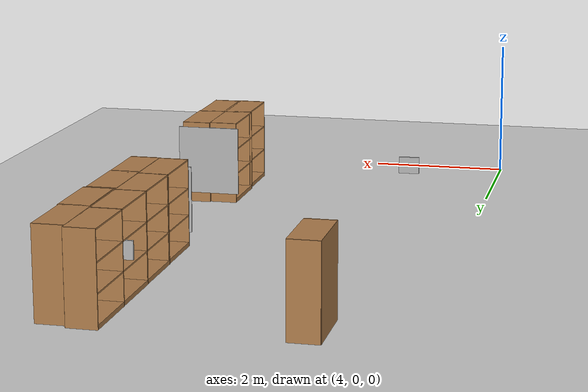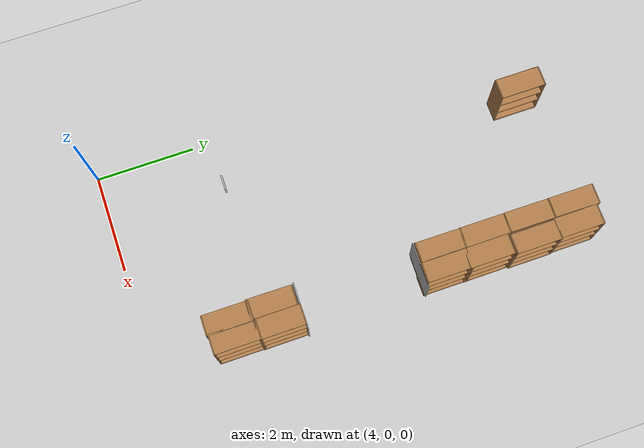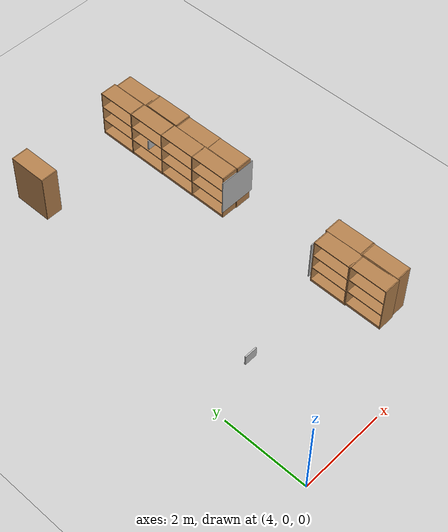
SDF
<sdf version="1.7">
 <world name="library_world">
  <model name="ground_plane">
   <static>1</static>
   <link name="link">
    <collision name="collision">
     <geometry><plane><normal>0 0 1</normal><size>100 100</size></plane></geometry>
     <surface>
      <contact><collide_bitmask>65535</collide_bitmask></contact>
      <friction><ode><mu>100</mu><mu2>50</mu2></ode></friction>
     </surface>
    </collision>
    <visual name="visual">
     <cast_shadows>0</cast_shadows>
     <geometry><plane><normal>0 0 1</normal><size>100 100</size></plane></geometry>
     <material>
      <script><uri>file://media/materials/scripts/gazebo.material</uri><name>Gazebo/Grey</name></script>
     </material>
    </visual>
   </link>
  </model>
  <model name="bookshelf_0_clone_8_clone_9">
   <static>1</static>
   <link name="link">
    <inertial><mass>1</mass></inertial>
    <collision name="back">
     <pose>0 0.005 0.6 0 -0 0</pose>
     <geometry><box><size>0.9 0.01 1.2</size></box></geometry>
    </collision>
    <visual name="visual1">
     <pose>0 0.005 0.6 0 -0 0</pose>
     <geometry><box><size>0.9 0.01 1.2</size></box></geometry>
     <material>
      <script><uri>file://media/materials/scripts/gazebo.material</uri><name>Gazebo/Wood</name></script>
     </material>
    </visual>
    <collision name="left_side">
     <pose>0.45 -0.195 0.6 0 -0 0</pose>
     <geometry><box><size>0.02 0.4 1.2</size></box></geometry>
    </collision>
    <visual name="visual2">
     <pose>0.45 -0.195 0.6 0 -0 0</pose>
     <geometry><box><size>0.02 0.4 1.2</size></box></geometry>
     <material>
      <script><uri>file://media/materials/scripts/gazebo.material</uri><name>Gazebo/Wood</name></script>
     </material>
    </visual>
    <collision name="right_side">
     <pose>-0.45 -0.195 0.6 0 -0 0</pose>
     <geometry><box><size>0.02 0.4 1.2</size></box></geometry>
    </collision>
    <visual name="visual3">
     <pose>-0.45 -0.195 0.6 0 -0 0</pose>
     <geometry><box><size>0.02 0.4 1.2</size></box></geometry>
     <material>
      <script><uri>file://media/materials/scripts/gazebo.material</uri><name>Gazebo/Wood</name></script>
     </material>
    </visual>
    <collision name="bottom">
     <pose>0 -0.195 0.03 0 -0 0</pose>
     <geometry><box><size>0.88 0.4 0.06</size></box></geometry>
    </collision>
    <visual name="visual4">
     <pose>0 -0.195 0.03 0 -0 0</pose>
     <geometry><box><size>0.88 0.4 0.06</size></box></geometry>
     <material>
      <script><uri>file://media/materials/scripts/gazebo.material</uri><name>Gazebo/Wood</name></script>
     </material>
    </visual>
    <collision name="top">
     <pose>0 -0.195 1.19 0 -0 0</pose>
     <geometry><box><size>0.88 0.4 0.02</size></box></geometry>
    </collision>
    <visual name="visual5">
     <pose>0 -0.195 1.19 0 -0 0</pose>
     <geometry><box><size>0.88 0.4 0.02</size></box></geometry>
     <material>
      <script><uri>file://media/materials/scripts/gazebo.material</uri><name>Gazebo/Wood</name></script>
     </material>
    </visual>
    <collision name="low_shelf">
     <pose>0 -0.195 0.43 0 -0 0</pose>
     <geometry><box><size>0.88 0.4 0.02</size></box></geometry>
    </collision>
    <visual name="visual6">
     <pose>0 -0.195 0.43 0 -0 0</pose>
     <geometry><box><size>0.88 0.4 0.02</size></box></geometry>
     <material>
      <script><uri>file://media/materials/scripts/gazebo.material</uri><name>Gazebo/Wood</name></script>
     </material>
    </visual>
    <collision name="high_shelf">
     <pose>0 -0.195 0.8 0 -0 0</pose>
     <geometry><box><size>0.88 0.4 0.02</size></box></geometry>
    </collision>
    <visual name="visual7">
     <pose>0 -0.195 0.8 0 -0 0</pose>
     <geometry><box><size>0.88 0.4 0.02</size></box></geometry>
     <material>
      <script><uri>file://media/materials/scripts/gazebo.material</uri><name>Gazebo/Wood</name></script>
     </material>
    </visual>
   </link>
   <pose>7.99259 8.5749 0 0 0 -1.57537</pose>
  </model>
  <model name="bookshelf_0_clone_8_clone_10">
   <static>1</static>
   <link name="link">
    <inertial><mass>1</mass></inertial>
    <collision name="back">
     <pose>0 0.005 0.6 0 -0 0</pose>
     <geometry><box><size>0.9 0.01 1.2</size></box></geometry>
    </collision>
    <visual name="visual1">
     <pose>0 0.005 0.6 0 -0 0</pose>
     <geometry><box><size>0.9 0.01 1.2</size></box></geometry>
     <material>
      <script><uri>file://media/materials/scripts/gazebo.material</uri><name>Gazebo/Wood</name></script>
     </material>
    </visual>
    <collision name="left_side">
     <pose>0.45 -0.195 0.6 0 -0 0</pose>
     <geometry><box><size>0.02 0.4 1.2</size></box></geometry>
    </collision>
    <visual name="visual2">
     <pose>0.45 -0.195 0.6 0 -0 0</pose>
     <geometry><box><size>0.02 0.4 1.2</size></box></geometry>
     <material>
      <script><uri>file://media/materials/scripts/gazebo.material</uri><name>Gazebo/Wood</name></script>
     </material>
    </visual>
    <collision name="right_side">
     <pose>-0.45 -0.195 0.6 0 -0 0</pose>
     <geometry><box><size>0.02 0.4 1.2</size></box></geometry>
    </collision>
    <visual name="visual3">
     <pose>-0.45 -0.195 0.6 0 -0 0</pose>
     <geometry><box><size>0.02 0.4 1.2</size></box></geometry>
     <material>
      <script><uri>file://media/materials/scripts/gazebo.material</uri><name>Gazebo/Wood</name></script>
     </material>
    </visual>
    <collision name="bottom">
     <pose>0 -0.195 0.03 0 -0 0</pose>
     <geometry><box><size>0.88 0.4 0.06</size></box></geometry>
    </collision>
    <visual name="visual4">
     <pose>0 -0.195 0.03 0 -0 0</pose>
     <geometry><box><size>0.88 0.4 0.06</size></box></geometry>
     <material>
      <script><uri>file://media/materials/scripts/gazebo.material</uri><name>Gazebo/Wood</name></script>
     </material>
    </visual>
    <collision name="top">
     <pose>0 -0.195 1.19 0 -0 0</pose>
     <geometry><box><size>0.88 0.4 0.02</size></box></geometry>
    </collision>
    <visual name="visual5">
     <pose>0 -0.195 1.19 0 -0 0</pose>
     <geometry><box><size>0.88 0.4 0.02</size></box></geometry>
     <material>
      <script><uri>file://media/materials/scripts/gazebo.material</uri><name>Gazebo/Wood</name></script>
     </material>
    </visual>
    <collision name="low_shelf">
     <pose>0 -0.195 0.43 0 -0 0</pose>
     <geometry><box><size>0.88 0.4 0.02</size></box></geometry>
    </collision>
    <visual name="visual6">
     <pose>0 -0.195 0.43 0 -0 0</pose>
     <geometry><box><size>0.88 0.4 0.02</size></box></geometry>
     <material>
      <script><uri>file://media/materials/scripts/gazebo.material</uri><name>Gazebo/Wood</name></script>
     </material>
    </visual>
    <collision name="high_shelf">
     <pose>0 -0.195 0.8 0 -0 0</pose>
     <geometry><box><size>0.88 0.4 0.02</size></box></geometry>
    </collision>
    <visual name="visual7">
     <pose>0 -0.195 0.8 0 -0 0</pose>
     <geometry><box><size>0.88 0.4 0.02</size></box></geometry>
     <material>
      <script><uri>file://media/materials/scripts/gazebo.material</uri><name>Gazebo/Wood</name></script>
     </material>
    </visual>
   </link>
   <pose>7.99197 7.6683 0 0 0 -1.57537</pose>
  </model>
  <model name="bookshelf_0_clone_8_clone_11">
   <static>1</static>
   <link name="link">
    <inertial><mass>1</mass></inertial>
    <collision name="back">
     <pose>0 0.005 0.6 0 -0 0</pose>
     <geometry><box><size>0.9 0.01 1.2</size></box></geometry>
    </collision>
    <visual name="visual1">
     <pose>0 0.005 0.6 0 -0 0</pose>
     <geometry><box><size>0.9 0.01 1.2</size></box></geometry>
     <material>
      <script><uri>file://media/materials/scripts/gazebo.material</uri><name>Gazebo/Wood</name></script>
     </material>
    </visual>
    <collision name="left_side">
     <pose>0.45 -0.195 0.6 0 -0 0</pose>
     <geometry><box><size>0.02 0.4 1.2</size></box></geometry>
    </collision>
    <visual name="visual2">
     <pose>0.45 -0.195 0.6 0 -0 0</pose>
     <geometry><box><size>0.02 0.4 1.2</size></box></geometry>
     <material>
      <script><uri>file://media/materials/scripts/gazebo.material</uri><name>Gazebo/Wood</name></script>
     </material>
    </visual>
    <collision name="right_side">
     <pose>-0.45 -0.195 0.6 0 -0 0</pose>
     <geometry><box><size>0.02 0.4 1.2</size></box></geometry>
    </collision>
    <visual name="visual3">
     <pose>-0.45 -0.195 0.6 0 -0 0</pose>
     <geometry><box><size>0.02 0.4 1.2</size></box></geometry>
     <material>
      <script><uri>file://media/materials/scripts/gazebo.material</uri><name>Gazebo/Wood</name></script>
     </material>
    </visual>
    <collision name="bottom">
     <pose>0 -0.195 0.03 0 -0 0</pose>
     <geometry><box><size>0.88 0.4 0.06</size></box></geometry>
    </collision>
    <visual name="visual4">
     <pose>0 -0.195 0.03 0 -0 0</pose>
     <geometry><box><size>0.88 0.4 0.06</size></box></geometry>
     <material>
      <script><uri>file://media/materials/scripts/gazebo.material</uri><name>Gazebo/Wood</name></script>
     </material>
    </visual>
    <collision name="top">
     <pose>0 -0.195 1.19 0 -0 0</pose>
     <geometry><box><size>0.88 0.4 0.02</size></box></geometry>
    </collision>
    <visual name="visual5">
     <pose>0 -0.195 1.19 0 -0 0</pose>
     <geometry><box><size>0.88 0.4 0.02</size></box></geometry>
     <material>
      <script><uri>file://media/materials/scripts/gazebo.material</uri><name>Gazebo/Wood</name></script>
     </material>
    </visual>
    <collision name="low_shelf">
     <pose>0 -0.195 0.43 0 -0 0</pose>
     <geometry><box><size>0.88 0.4 0.02</size></box></geometry>
    </collision>
    <visual name="visual6">
     <pose>0 -0.195 0.43 0 -0 0</pose>
     <geometry><box><size>0.88 0.4 0.02</size></box></geometry>
     <material>
      <script><uri>file://media/materials/scripts/gazebo.material</uri><name>Gazebo/Wood</name></script>
     </material>
    </visual>
    <collision name="high_shelf">
     <pose>0 -0.195 0.8 0 -0 0</pose>
     <geometry><box><size>0.88 0.4 0.02</size></box></geometry>
    </collision>
    <visual name="visual7">
     <pose>0 -0.195 0.8 0 -0 0</pose>
     <geometry><box><size>0.88 0.4 0.02</size></box></geometry>
     <material>
      <script><uri>file://media/materials/scripts/gazebo.material</uri><name>Gazebo/Wood</name></script>
     </material>
    </visual>
   </link>
   <pose>7.99272 6.76938 0 0 0 -1.57537</pose>
  </model>
  <model name="bookshelf_0_clone_8_clone_12">
   <static>1</static>
   <link name="link">
    <inertial><mass>1</mass></inertial>
    <collision name="back">
     <pose>0 0.005 0.6 0 -0 0</pose>
     <geometry><box><size>0.9 0.01 1.2</size></box></geometry>
    </collision>
    <visual name="visual1">
     <pose>0 0.005 0.6 0 -0 0</pose>
     <geometry><box><size>0.9 0.01 1.2</size></box></geometry>
     <material>
      <script><uri>file://media/materials/scripts/gazebo.material</uri><name>Gazebo/Wood</name></script>
     </material>
    </visual>
    <collision name="left_side">
     <pose>0.45 -0.195 0.6 0 -0 0</pose>
     <geometry><box><size>0.02 0.4 1.2</size></box></geometry>
    </collision>
    <visual name="visual2">
     <pose>0.45 -0.195 0.6 0 -0 0</pose>
     <geometry><box><size>0.02 0.4 1.2</size></box></geometry>
     <material>
      <script><uri>file://media/materials/scripts/gazebo.material</uri><name>Gazebo/Wood</name></script>
     </material>
    </visual>
    <collision name="right_side">
     <pose>-0.45 -0.195 0.6 0 -0 0</pose>
     <geometry><box><size>0.02 0.4 1.2</size></box></geometry>
    </collision>
    <visual name="visual3">
     <pose>-0.45 -0.195 0.6 0 -0 0</pose>
     <geometry><box><size>0.02 0.4 1.2</size></box></geometry>
     <material>
      <script><uri>file://media/materials/scripts/gazebo.material</uri><name>Gazebo/Wood</name></script>
     </material>
    </visual>
    <collision name="bottom">
     <pose>0 -0.195 0.03 0 -0 0</pose>
     <geometry><box><size>0.88 0.4 0.06</size></box></geometry>
    </collision>
    <visual name="visual4">
     <pose>0 -0.195 0.03 0 -0 0</pose>
     <geometry><box><size>0.88 0.4 0.06</size></box></geometry>
     <material>
      <script><uri>file://media/materials/scripts/gazebo.material</uri><name>Gazebo/Wood</name></script>
     </material>
    </visual>
    <collision name="top">
     <pose>0 -0.195 1.19 0 -0 0</pose>
     <geometry><box><size>0.88 0.4 0.02</size></box></geometry>
    </collision>
    <visual name="visual5">
     <pose>0 -0.195 1.19 0 -0 0</pose>
     <geometry><box><size>0.88 0.4 0.02</size></box></geometry>
     <material>
      <script><uri>file://media/materials/scripts/gazebo.material</uri><name>Gazebo/Wood</name></script>
     </material>
    </visual>
    <collision name="low_shelf">
     <pose>0 -0.195 0.43 0 -0 0</pose>
     <geometry><box><size>0.88 0.4 0.02</size></box></geometry>
    </collision>
    <visual name="visual6">
     <pose>0 -0.195 0.43 0 -0 0</pose>
     <geometry><box><size>0.88 0.4 0.02</size></box></geometry>
     <material>
      <script><uri>file://media/materials/scripts/gazebo.material</uri><name>Gazebo/Wood</name></script>
     </material>
    </visual>
    <collision name="high_shelf">
     <pose>0 -0.195 0.8 0 -0 0</pose>
     <geometry><box><size>0.88 0.4 0.02</size></box></geometry>
    </collision>
    <visual name="visual7">
     <pose>0 -0.195 0.8 0 -0 0</pose>
     <geometry><box><size>0.88 0.4 0.02</size></box></geometry>
     <material>
      <script><uri>file://media/materials/scripts/gazebo.material</uri><name>Gazebo/Wood</name></script>
     </material>
    </visual>
   </link>
   <pose>7.99458 5.88295 0 0 0 -1.57537</pose>
  </model>
  <model name="bookshelf_0_clone_2_clone_9">
   <static>1</static>
   <link name="link">
    <inertial><mass>1</mass></inertial>
    <collision name="back">
     <pose>0 0.005 0.6 0 -0 0</pose>
     <geometry><box><size>0.9 0.01 1.2</size></box></geometry>
    </collision>
    <visual name="visual1">
     <pose>0 0.005 0.6 0 -0 0</pose>
     <geometry><box><size>0.9 0.01 1.2</size></box></geometry>
     <material>
      <script><uri>file://media/materials/scripts/gazebo.material</uri><name>Gazebo/Wood</name></script>
     </material>
    </visual>
    <collision name="left_side">
     <pose>0.45 -0.195 0.6 0 -0 0</pose>
     <geometry><box><size>0.02 0.4 1.2</size></box></geometry>
    </collision>
    <visual name="visual2">
     <pose>0.45 -0.195 0.6 0 -0 0</pose>
     <geometry><box><size>0.02 0.4 1.2</size></box></geometry>
     <material>
      <script><uri>file://media/materials/scripts/gazebo.material</uri><name>Gazebo/Wood</name></script>
     </material>
    </visual>
    <collision name="right_side">
     <pose>-0.45 -0.195 0.6 0 -0 0</pose>
     <geometry><box><size>0.02 0.4 1.2</size></box></geometry>
    </collision>
    <visual name="visual3">
     <pose>-0.45 -0.195 0.6 0 -0 0</pose>
     <geometry><box><size>0.02 0.4 1.2</size></box></geometry>
     <material>
      <script><uri>file://media/materials/scripts/gazebo.material</uri><name>Gazebo/Wood</name></script>
     </material>
    </visual>
    <collision name="bottom">
     <pose>0 -0.195 0.03 0 -0 0</pose>
     <geometry><box><size>0.88 0.4 0.06</size></box></geometry>
    </collision>
    <visual name="visual4">
     <pose>0 -0.195 0.03 0 -0 0</pose>
     <geometry><box><size>0.88 0.4 0.06</size></box></geometry>
     <material>
      <script><uri>file://media/materials/scripts/gazebo.material</uri><name>Gazebo/Wood</name></script>
     </material>
    </visual>
    <collision name="top">
     <pose>0 -0.195 1.19 0 -0 0</pose>
     <geometry><box><size>0.88 0.4 0.02</size></box></geometry>
    </collision>
    <visual name="visual5">
     <pose>0 -0.195 1.19 0 -0 0</pose>
     <geometry><box><size>0.88 0.4 0.02</size></box></geometry>
     <material>
      <script><uri>file://media/materials/scripts/gazebo.material</uri><name>Gazebo/Wood</name></script>
     </material>
    </visual>
    <collision name="low_shelf">
     <pose>0 -0.195 0.43 0 -0 0</pose>
     <geometry><box><size>0.88 0.4 0.02</size></box></geometry>
    </collision>
    <visual name="visual6">
     <pose>0 -0.195 0.43 0 -0 0</pose>
     <geometry><box><size>0.88 0.4 0.02</size></box></geometry>
     <material>
      <script><uri>file://media/materials/scripts/gazebo.material</uri><name>Gazebo/Wood</name></script>
     </material>
    </visual>
    <collision name="high_shelf">
     <pose>0 -0.195 0.8 0 -0 0</pose>
     <geometry><box><size>0.88 0.4 0.02</size></box></geometry>
    </collision>
    <visual name="visual7">
     <pose>0 -0.195 0.8 0 -0 0</pose>
     <geometry><box><size>0.88 0.4 0.02</size></box></geometry>
     <material>
      <script><uri>file://media/materials/scripts/gazebo.material</uri><name>Gazebo/Wood</name></script>
     </material>
    </visual>
   </link>
   <pose>5.02177 8.50989 0 0 -0 1.57381</pose>
  </model>
  <model name="bookshelf_0_clone_2_clone_14">
   <static>1</static>
   <link name="link">
    <inertial><mass>1</mass></inertial>
    <collision name="back">
     <pose>0 0.005 0.6 0 -0 0</pose>
     <geometry><box><size>0.9 0.01 1.2</size></box></geometry>
    </collision>
    <visual name="visual1">
     <pose>0 0.005 0.6 0 -0 0</pose>
     <geometry><box><size>0.9 0.01 1.2</size></box></geometry>
     <material>
      <script><uri>file://media/materials/scripts/gazebo.material</uri><name>Gazebo/Wood</name></script>
     </material>
    </visual>
    <collision name="left_side">
     <pose>0.45 -0.195 0.6 0 -0 0</pose>
     <geometry><box><size>0.02 0.4 1.2</size></box></geometry>
    </collision>
    <visual name="visual2">
     <pose>0.45 -0.195 0.6 0 -0 0</pose>
     <geometry><box><size>0.02 0.4 1.2</size></box></geometry>
     <material>
      <script><uri>file://media/materials/scripts/gazebo.material</uri><name>Gazebo/Wood</name></script>
     </material>
    </visual>
    <collision name="right_side">
     <pose>-0.45 -0.195 0.6 0 -0 0</pose>
     <geometry><box><size>0.02 0.4 1.2</size></box></geometry>
    </collision>
    <visual name="visual3">
     <pose>-0.45 -0.195 0.6 0 -0 0</pose>
     <geometry><box><size>0.02 0.4 1.2</size></box></geometry>
     <material>
      <script><uri>file://media/materials/scripts/gazebo.material</uri><name>Gazebo/Wood</name></script>
     </material>
    </visual>
    <collision name="bottom">
     <pose>0 -0.195 0.03 0 -0 0</pose>
     <geometry><box><size>0.88 0.4 0.06</size></box></geometry>
    </collision>
    <visual name="visual4">
     <pose>0 -0.195 0.03 0 -0 0</pose>
     <geometry><box><size>0.88 0.4 0.06</size></box></geometry>
     <material>
      <script><uri>file://media/materials/scripts/gazebo.material</uri><name>Gazebo/Wood</name></script>
     </material>
    </visual>
    <collision name="top">
     <pose>0 -0.195 1.19 0 -0 0</pose>
     <geometry><box><size>0.88 0.4 0.02</size></box></geometry>
    </collision>
    <visual name="visual5">
     <pose>0 -0.195 1.19 0 -0 0</pose>
     <geometry><box><size>0.88 0.4 0.02</size></box></geometry>
     <material>
      <script><uri>file://media/materials/scripts/gazebo.material</uri><name>Gazebo/Wood</name></script>
     </material>
    </visual>
    <collision name="low_shelf">
     <pose>0 -0.195 0.43 0 -0 0</pose>
     <geometry><box><size>0.88 0.4 0.02</size></box></geometry>
    </collision>
    <visual name="visual6">
     <pose>0 -0.195 0.43 0 -0 0</pose>
     <geometry><box><size>0.88 0.4 0.02</size></box></geometry>
     <material>
      <script><uri>file://media/materials/scripts/gazebo.material</uri><name>Gazebo/Wood</name></script>
     </material>
    </visual>
    <collision name="high_shelf">
     <pose>0 -0.195 0.8 0 -0 0</pose>
     <geometry><box><size>0.88 0.4 0.02</size></box></geometry>
    </collision>
    <visual name="visual7">
     <pose>0 -0.195 0.8 0 -0 0</pose>
     <geometry><box><size>0.88 0.4 0.02</size></box></geometry>
     <material>
      <script><uri>file://media/materials/scripts/gazebo.material</uri><name>Gazebo/Wood</name></script>
     </material>
    </visual>
   </link>
   <pose>8.00906 8.50724 0 0 -0 1.57381</pose>
  </model>
  <model name="bookshelf_0_clone_2_clone_15">
   <static>1</static>
   <link name="link">
    <inertial><mass>1</mass></inertial>
    <collision name="back">
     <pose>0 0.005 0.6 0 -0 0</pose>
     <geometry><box><size>0.9 0.01 1.2</size></box></geometry>
    </collision>
    <visual name="visual1">
     <pose>0 0.005 0.6 0 -0 0</pose>
     <geometry><box><size>0.9 0.01 1.2</size></box></geometry>
     <material>
      <script><uri>file://media/materials/scripts/gazebo.material</uri><name>Gazebo/Wood</name></script>
     </material>
    </visual>
    <collision name="left_side">
     <pose>0.45 -0.195 0.6 0 -0 0</pose>
     <geometry><box><size>0.02 0.4 1.2</size></box></geometry>
    </collision>
    <visual name="visual2">
     <pose>0.45 -0.195 0.6 0 -0 0</pose>
     <geometry><box><size>0.02 0.4 1.2</size></box></geometry>
     <material>
      <script><uri>file://media/materials/scripts/gazebo.material</uri><name>Gazebo/Wood</name></script>
     </material>
    </visual>
    <collision name="right_side">
     <pose>-0.45 -0.195 0.6 0 -0 0</pose>
     <geometry><box><size>0.02 0.4 1.2</size></box></geometry>
    </collision>
    <visual name="visual3">
     <pose>-0.45 -0.195 0.6 0 -0 0</pose>
     <geometry><box><size>0.02 0.4 1.2</size></box></geometry>
     <material>
      <script><uri>file://media/materials/scripts/gazebo.material</uri><name>Gazebo/Wood</name></script>
     </material>
    </visual>
    <collision name="bottom">
     <pose>0 -0.195 0.03 0 -0 0</pose>
     <geometry><box><size>0.88 0.4 0.06</size></box></geometry>
    </collision>
    <visual name="visual4">
     <pose>0 -0.195 0.03 0 -0 0</pose>
     <geometry><box><size>0.88 0.4 0.06</size></box></geometry>
     <material>
      <script><uri>file://media/materials/scripts/gazebo.material</uri><name>Gazebo/Wood</name></script>
     </material>
    </visual>
    <collision name="top">
     <pose>0 -0.195 1.19 0 -0 0</pose>
     <geometry><box><size>0.88 0.4 0.02</size></box></geometry>
    </collision>
    <visual name="visual5">
     <pose>0 -0.195 1.19 0 -0 0</pose>
     <geometry><box><size>0.88 0.4 0.02</size></box></geometry>
     <material>
      <script><uri>file://media/materials/scripts/gazebo.material</uri><name>Gazebo/Wood</name></script>
     </material>
    </visual>
    <collision name="low_shelf">
     <pose>0 -0.195 0.43 0 -0 0</pose>
     <geometry><box><size>0.88 0.4 0.02</size></box></geometry>
    </collision>
    <visual name="visual6">
     <pose>0 -0.195 0.43 0 -0 0</pose>
     <geometry><box><size>0.88 0.4 0.02</size></box></geometry>
     <material>
      <script><uri>file://media/materials/scripts/gazebo.material</uri><name>Gazebo/Wood</name></script>
     </material>
    </visual>
    <collision name="high_shelf">
     <pose>0 -0.195 0.8 0 -0 0</pose>
     <geometry><box><size>0.88 0.4 0.02</size></box></geometry>
    </collision>
    <visual name="visual7">
     <pose>0 -0.195 0.8 0 -0 0</pose>
     <geometry><box><size>0.88 0.4 0.02</size></box></geometry>
     <material>
      <script><uri>file://media/materials/scripts/gazebo.material</uri><name>Gazebo/Wood</name></script>
     </material>
    </visual>
   </link>
   <pose>8.02803 7.63552 0 0 -0 1.57381</pose>
  </model>
  <model name="bookshelf_0_clone_2_clone_16">
   <static>1</static>
   <link name="link">
    <inertial><mass>1</mass></inertial>
    <collision name="back">
     <pose>0 0.005 0.6 0 -0 0</pose>
     <geometry><box><size>0.9 0.01 1.2</size></box></geometry>
    </collision>
    <visual name="visual1">
     <pose>0 0.005 0.6 0 -0 0</pose>
     <geometry><box><size>0.9 0.01 1.2</size></box></geometry>
     <material>
      <script><uri>file://media/materials/scripts/gazebo.material</uri><name>Gazebo/Wood</name></script>
     </material>
    </visual>
    <collision name="left_side">
     <pose>0.45 -0.195 0.6 0 -0 0</pose>
     <geometry><box><size>0.02 0.4 1.2</size></box></geometry>
    </collision>
    <visual name="visual2">
     <pose>0.45 -0.195 0.6 0 -0 0</pose>
     <geometry><box><size>0.02 0.4 1.2</size></box></geometry>
     <material>
      <script><uri>file://media/materials/scripts/gazebo.material</uri><name>Gazebo/Wood</name></script>
     </material>
    </visual>
    <collision name="right_side">
     <pose>-0.45 -0.195 0.6 0 -0 0</pose>
     <geometry><box><size>0.02 0.4 1.2</size></box></geometry>
    </collision>
    <visual name="visual3">
     <pose>-0.45 -0.195 0.6 0 -0 0</pose>
     <geometry><box><size>0.02 0.4 1.2</size></box></geometry>
     <material>
      <script><uri>file://media/materials/scripts/gazebo.material</uri><name>Gazebo/Wood</name></script>
     </material>
    </visual>
    <collision name="bottom">
     <pose>0 -0.195 0.03 0 -0 0</pose>
     <geometry><box><size>0.88 0.4 0.06</size></box></geometry>
    </collision>
    <visual name="visual4">
     <pose>0 -0.195 0.03 0 -0 0</pose>
     <geometry><box><size>0.88 0.4 0.06</size></box></geometry>
     <material>
      <script><uri>file://media/materials/scripts/gazebo.material</uri><name>Gazebo/Wood</name></script>
     </material>
    </visual>
    <collision name="top">
     <pose>0 -0.195 1.19 0 -0 0</pose>
     <geometry><box><size>0.88 0.4 0.02</size></box></geometry>
    </collision>
    <visual name="visual5">
     <pose>0 -0.195 1.19 0 -0 0</pose>
     <geometry><box><size>0.88 0.4 0.02</size></box></geometry>
     <material>
      <script><uri>file://media/materials/scripts/gazebo.material</uri><name>Gazebo/Wood</name></script>
     </material>
    </visual>
    <collision name="low_shelf">
     <pose>0 -0.195 0.43 0 -0 0</pose>
     <geometry><box><size>0.88 0.4 0.02</size></box></geometry>
    </collision>
    <visual name="visual6">
     <pose>0 -0.195 0.43 0 -0 0</pose>
     <geometry><box><size>0.88 0.4 0.02</size></box></geometry>
     <material>
      <script><uri>file://media/materials/scripts/gazebo.material</uri><name>Gazebo/Wood</name></script>
     </material>
    </visual>
    <collision name="high_shelf">
     <pose>0 -0.195 0.8 0 -0 0</pose>
     <geometry><box><size>0.88 0.4 0.02</size></box></geometry>
    </collision>
    <visual name="visual7">
     <pose>0 -0.195 0.8 0 -0 0</pose>
     <geometry><box><size>0.88 0.4 0.02</size></box></geometry>
     <material>
      <script><uri>file://media/materials/scripts/gazebo.material</uri><name>Gazebo/Wood</name></script>
     </material>
    </visual>
   </link>
   <pose>8.003 6.70272 0 0 -0 1.57381</pose>
  </model>
  <model name="bookshelf_0_clone_2_clone_17">
   <static>1</static>
   <link name="link">
    <inertial><mass>1</mass></inertial>
    <collision name="back">
     <pose>0 0.005 0.6 0 -0 0</pose>
     <geometry><box><size>0.9 0.01 1.2</size></box></geometry>
    </collision>
    <visual name="visual1">
     <pose>0 0.005 0.6 0 -0 0</pose>
     <geometry><box><size>0.9 0.01 1.2</size></box></geometry>
     <material>
      <script><uri>file://media/materials/scripts/gazebo.material</uri><name>Gazebo/Wood</name></script>
     </material>
    </visual>
    <collision name="left_side">
     <pose>0.45 -0.195 0.6 0 -0 0</pose>
     <geometry><box><size>0.02 0.4 1.2</size></box></geometry>
    </collision>
    <visual name="visual2">
     <pose>0.45 -0.195 0.6 0 -0 0</pose>
     <geometry><box><size>0.02 0.4 1.2</size></box></geometry>
     <material>
      <script><uri>file://media/materials/scripts/gazebo.material</uri><name>Gazebo/Wood</name></script>
     </material>
    </visual>
    <collision name="right_side">
     <pose>-0.45 -0.195 0.6 0 -0 0</pose>
     <geometry><box><size>0.02 0.4 1.2</size></box></geometry>
    </collision>
    <visual name="visual3">
     <pose>-0.45 -0.195 0.6 0 -0 0</pose>
     <geometry><box><size>0.02 0.4 1.2</size></box></geometry>
     <material>
      <script><uri>file://media/materials/scripts/gazebo.material</uri><name>Gazebo/Wood</name></script>
     </material>
    </visual>
    <collision name="bottom">
     <pose>0 -0.195 0.03 0 -0 0</pose>
     <geometry><box><size>0.88 0.4 0.06</size></box></geometry>
    </collision>
    <visual name="visual4">
     <pose>0 -0.195 0.03 0 -0 0</pose>
     <geometry><box><size>0.88 0.4 0.06</size></box></geometry>
     <material>
      <script><uri>file://media/materials/scripts/gazebo.material</uri><name>Gazebo/Wood</name></script>
     </material>
    </visual>
    <collision name="top">
     <pose>0 -0.195 1.19 0 -0 0</pose>
     <geometry><box><size>0.88 0.4 0.02</size></box></geometry>
    </collision>
    <visual name="visual5">
     <pose>0 -0.195 1.19 0 -0 0</pose>
     <geometry><box><size>0.88 0.4 0.02</size></box></geometry>
     <material>
      <script><uri>file://media/materials/scripts/gazebo.material</uri><name>Gazebo/Wood</name></script>
     </material>
    </visual>
    <collision name="low_shelf">
     <pose>0 -0.195 0.43 0 -0 0</pose>
     <geometry><box><size>0.88 0.4 0.02</size></box></geometry>
    </collision>
    <visual name="visual6">
     <pose>0 -0.195 0.43 0 -0 0</pose>
     <geometry><box><size>0.88 0.4 0.02</size></box></geometry>
     <material>
      <script><uri>file://media/materials/scripts/gazebo.material</uri><name>Gazebo/Wood</name></script>
     </material>
    </visual>
    <collision name="high_shelf">
     <pose>0 -0.195 0.8 0 -0 0</pose>
     <geometry><box><size>0.88 0.4 0.02</size></box></geometry>
    </collision>
    <visual name="visual7">
     <pose>0 -0.195 0.8 0 -0 0</pose>
     <geometry><box><size>0.88 0.4 0.02</size></box></geometry>
     <material>
      <script><uri>file://media/materials/scripts/gazebo.material</uri><name>Gazebo/Wood</name></script>
     </material>
    </visual>
   </link>
   <pose>8.0008 5.86669 0 0 -0 1.57381</pose>
  </model>
  <model name="bookshelf_0_clone_2_clone_34">
   <static>1</static>
   <link name="link">
    <inertial><mass>1</mass></inertial>
    <collision name="back">
     <pose>0 0.005 0.6 0 -0 0</pose>
     <geometry><box><size>0.9 0.01 1.2</size></box></geometry>
    </collision>
    <visual name="visual1">
     <pose>0 0.005 0.6 0 -0 0</pose>
     <geometry><box><size>0.9 0.01 1.2</size></box></geometry>
     <material>
      <script><uri>file://media/materials/scripts/gazebo.material</uri><name>Gazebo/Wood</name></script>
     </material>
    </visual>
    <collision name="left_side">
     <pose>0.45 -0.195 0.6 0 -0 0</pose>
     <geometry><box><size>0.02 0.4 1.2</size></box></geometry>
    </collision>
    <visual name="visual2">
     <pose>0.45 -0.195 0.6 0 -0 0</pose>
     <geometry><box><size>0.02 0.4 1.2</size></box></geometry>
     <material>
      <script><uri>file://media/materials/scripts/gazebo.material</uri><name>Gazebo/Wood</name></script>
     </material>
    </visual>
    <collision name="right_side">
     <pose>-0.45 -0.195 0.6 0 -0 0</pose>
     <geometry><box><size>0.02 0.4 1.2</size></box></geometry>
    </collision>
    <visual name="visual3">
     <pose>-0.45 -0.195 0.6 0 -0 0</pose>
     <geometry><box><size>0.02 0.4 1.2</size></box></geometry>
     <material>
      <script><uri>file://media/materials/scripts/gazebo.material</uri><name>Gazebo/Wood</name></script>
     </material>
    </visual>
    <collision name="bottom">
     <pose>0 -0.195 0.03 0 -0 0</pose>
     <geometry><box><size>0.88 0.4 0.06</size></box></geometry>
    </collision>
    <visual name="visual4">
     <pose>0 -0.195 0.03 0 -0 0</pose>
     <geometry><box><size>0.88 0.4 0.06</size></box></geometry>
     <material>
      <script><uri>file://media/materials/scripts/gazebo.material</uri><name>Gazebo/Wood</name></script>
     </material>
    </visual>
    <collision name="top">
     <pose>0 -0.195 1.19 0 -0 0</pose>
     <geometry><box><size>0.88 0.4 0.02</size></box></geometry>
    </collision>
    <visual name="visual5">
     <pose>0 -0.195 1.19 0 -0 0</pose>
     <geometry><box><size>0.88 0.4 0.02</size></box></geometry>
     <material>
      <script><uri>file://media/materials/scripts/gazebo.material</uri><name>Gazebo/Wood</name></script>
     </material>
    </visual>
    <collision name="low_shelf">
     <pose>0 -0.195 0.43 0 -0 0</pose>
     <geometry><box><size>0.88 0.4 0.02</size></box></geometry>
    </collision>
    <visual name="visual6">
     <pose>0 -0.195 0.43 0 -0 0</pose>
     <geometry><box><size>0.88 0.4 0.02</size></box></geometry>
     <material>
      <script><uri>file://media/materials/scripts/gazebo.material</uri><name>Gazebo/Wood</name></script>
     </material>
    </visual>
    <collision name="high_shelf">
     <pose>0 -0.195 0.8 0 -0 0</pose>
     <geometry><box><size>0.88 0.4 0.02</size></box></geometry>
    </collision>
    <visual name="visual7">
     <pose>0 -0.195 0.8 0 -0 0</pose>
     <geometry><box><size>0.88 0.4 0.02</size></box></geometry>
     <material>
      <script><uri>file://media/materials/scripts/gazebo.material</uri><name>Gazebo/Wood</name></script>
     </material>
    </visual>
   </link>
   <pose>8.00174 2.58507 0 0 -0 1.57381</pose>
  </model>
  <model name="bookshelf_0_clone_2_clone_35">
   <static>1</static>
   <link name="link">
    <inertial><mass>1</mass></inertial>
    <collision name="back">
     <pose>0 0.005 0.6 0 -0 0</pose>
     <geometry><box><size>0.9 0.01 1.2</size></box></geometry>
    </collision>
    <visual name="visual1">
     <pose>0 0.005 0.6 0 -0 0</pose>
     <geometry><box><size>0.9 0.01 1.2</size></box></geometry>
     <material>
      <script><uri>file://media/materials/scripts/gazebo.material</uri><name>Gazebo/Wood</name></script>
     </material>
    </visual>
    <collision name="left_side">
     <pose>0.45 -0.195 0.6 0 -0 0</pose>
     <geometry><box><size>0.02 0.4 1.2</size></box></geometry>
    </collision>
    <visual name="visual2">
     <pose>0.45 -0.195 0.6 0 -0 0</pose>
     <geometry><box><size>0.02 0.4 1.2</size></box></geometry>
     <material>
      <script><uri>file://media/materials/scripts/gazebo.material</uri><name>Gazebo/Wood</name></script>
     </material>
    </visual>
    <collision name="right_side">
     <pose>-0.45 -0.195 0.6 0 -0 0</pose>
     <geometry><box><size>0.02 0.4 1.2</size></box></geometry>
    </collision>
    <visual name="visual3">
     <pose>-0.45 -0.195 0.6 0 -0 0</pose>
     <geometry><box><size>0.02 0.4 1.2</size></box></geometry>
     <material>
      <script><uri>file://media/materials/scripts/gazebo.material</uri><name>Gazebo/Wood</name></script>
     </material>
    </visual>
    <collision name="bottom">
     <pose>0 -0.195 0.03 0 -0 0</pose>
     <geometry><box><size>0.88 0.4 0.06</size></box></geometry>
    </collision>
    <visual name="visual4">
     <pose>0 -0.195 0.03 0 -0 0</pose>
     <geometry><box><size>0.88 0.4 0.06</size></box></geometry>
     <material>
      <script><uri>file://media/materials/scripts/gazebo.material</uri><name>Gazebo/Wood</name></script>
     </material>
    </visual>
    <collision name="top">
     <pose>0 -0.195 1.19 0 -0 0</pose>
     <geometry><box><size>0.88 0.4 0.02</size></box></geometry>
    </collision>
    <visual name="visual5">
     <pose>0 -0.195 1.19 0 -0 0</pose>
     <geometry><box><size>0.88 0.4 0.02</size></box></geometry>
     <material>
      <script><uri>file://media/materials/scripts/gazebo.material</uri><name>Gazebo/Wood</name></script>
     </material>
    </visual>
    <collision name="low_shelf">
     <pose>0 -0.195 0.43 0 -0 0</pose>
     <geometry><box><size>0.88 0.4 0.02</size></box></geometry>
    </collision>
    <visual name="visual6">
     <pose>0 -0.195 0.43 0 -0 0</pose>
     <geometry><box><size>0.88 0.4 0.02</size></box></geometry>
     <material>
      <script><uri>file://media/materials/scripts/gazebo.material</uri><name>Gazebo/Wood</name></script>
     </material>
    </visual>
    <collision name="high_shelf">
     <pose>0 -0.195 0.8 0 -0 0</pose>
     <geometry><box><size>0.88 0.4 0.02</size></box></geometry>
    </collision>
    <visual name="visual7">
     <pose>0 -0.195 0.8 0 -0 0</pose>
     <geometry><box><size>0.88 0.4 0.02</size></box></geometry>
     <material>
      <script><uri>file://media/materials/scripts/gazebo.material</uri><name>Gazebo/Wood</name></script>
     </material>
    </visual>
   </link>
   <pose>7.99347 1.71311 0 0 -0 1.57381</pose>
  </model>
  <model name="bookshelf_0_clone_8_clone_17_clone_0">
   <static>1</static>
   <link name="link">
    <inertial><mass>1</mass></inertial>
    <collision name="back">
     <pose>0 0.005 0.6 0 -0 0</pose>
     <geometry><box><size>0.9 0.01 1.2</size></box></geometry>
    </collision>
    <visual name="visual1">
     <pose>0 0.005 0.6 0 -0 0</pose>
     <geometry><box><size>0.9 0.01 1.2</size></box></geometry>
     <material>
      <script><uri>file://media/materials/scripts/gazebo.material</uri><name>Gazebo/Wood</name></script>
     </material>
    </visual>
    <collision name="left_side">
     <pose>0.45 -0.195 0.6 0 -0 0</pose>
     <geometry><box><size>0.02 0.4 1.2</size></box></geometry>
    </collision>
    <visual name="visual2">
     <pose>0.45 -0.195 0.6 0 -0 0</pose>
     <geometry><box><size>0.02 0.4 1.2</size></box></geometry>
     <material>
      <script><uri>file://media/materials/scripts/gazebo.material</uri><name>Gazebo/Wood</name></script>
     </material>
    </visual>
    <collision name="right_side">
     <pose>-0.45 -0.195 0.6 0 -0 0</pose>
     <geometry><box><size>0.02 0.4 1.2</size></box></geometry>
    </collision>
    <visual name="visual3">
     <pose>-0.45 -0.195 0.6 0 -0 0</pose>
     <geometry><box><size>0.02 0.4 1.2</size></box></geometry>
     <material>
      <script><uri>file://media/materials/scripts/gazebo.material</uri><name>Gazebo/Wood</name></script>
     </material>
    </visual>
    <collision name="bottom">
     <pose>0 -0.195 0.03 0 -0 0</pose>
     <geometry><box><size>0.88 0.4 0.06</size></box></geometry>
    </collision>
    <visual name="visual4">
     <pose>0 -0.195 0.03 0 -0 0</pose>
     <geometry><box><size>0.88 0.4 0.06</size></box></geometry>
     <material>
      <script><uri>file://media/materials/scripts/gazebo.material</uri><name>Gazebo/Wood</name></script>
     </material>
    </visual>
    <collision name="top">
     <pose>0 -0.195 1.19 0 -0 0</pose>
     <geometry><box><size>0.88 0.4 0.02</size></box></geometry>
    </collision>
    <visual name="visual5">
     <pose>0 -0.195 1.19 0 -0 0</pose>
     <geometry><box><size>0.88 0.4 0.02</size></box></geometry>
     <material>
      <script><uri>file://media/materials/scripts/gazebo.material</uri><name>Gazebo/Wood</name></script>
     </material>
    </visual>
    <collision name="low_shelf">
     <pose>0 -0.195 0.43 0 -0 0</pose>
     <geometry><box><size>0.88 0.4 0.02</size></box></geometry>
    </collision>
    <visual name="visual6">
     <pose>0 -0.195 0.43 0 -0 0</pose>
     <geometry><box><size>0.88 0.4 0.02</size></box></geometry>
     <material>
      <script><uri>file://media/materials/scripts/gazebo.material</uri><name>Gazebo/Wood</name></script>
     </material>
    </visual>
    <collision name="high_shelf">
     <pose>0 -0.195 0.8 0 -0 0</pose>
     <geometry><box><size>0.88 0.4 0.02</size></box></geometry>
    </collision>
    <visual name="visual7">
     <pose>0 -0.195 0.8 0 -0 0</pose>
     <geometry><box><size>0.88 0.4 0.02</size></box></geometry>
     <material>
      <script><uri>file://media/materials/scripts/gazebo.material</uri><name>Gazebo/Wood</name></script>
     </material>
    </visual>
   </link>
   <pose>7.99222 2.54747 0 0 0 -1.57537</pose>
  </model>
  <model name="bookshelf_0_clone_8_clone_17_clone_1">
   <static>1</static>
   <link name="link">
    <inertial><mass>1</mass></inertial>
    <collision name="back">
     <pose>0 0.005 0.6 0 -0 0</pose>
     <geometry><box><size>0.9 0.01 1.2</size></box></geometry>
    </collision>
    <visual name="visual1">
     <pose>0 0.005 0.6 0 -0 0</pose>
     <geometry><box><size>0.9 0.01 1.2</size></box></geometry>
     <material>
      <script><uri>file://media/materials/scripts/gazebo.material</uri><name>Gazebo/Wood</name></script>
     </material>
    </visual>
    <collision name="left_side">
     <pose>0.45 -0.195 0.6 0 -0 0</pose>
     <geometry><box><size>0.02 0.4 1.2</size></box></geometry>
    </collision>
    <visual name="visual2">
     <pose>0.45 -0.195 0.6 0 -0 0</pose>
     <geometry><box><size>0.02 0.4 1.2</size></box></geometry>
     <material>
      <script><uri>file://media/materials/scripts/gazebo.material</uri><name>Gazebo/Wood</name></script>
     </material>
    </visual>
    <collision name="right_side">
     <pose>-0.45 -0.195 0.6 0 -0 0</pose>
     <geometry><box><size>0.02 0.4 1.2</size></box></geometry>
    </collision>
    <visual name="visual3">
     <pose>-0.45 -0.195 0.6 0 -0 0</pose>
     <geometry><box><size>0.02 0.4 1.2</size></box></geometry>
     <material>
      <script><uri>file://media/materials/scripts/gazebo.material</uri><name>Gazebo/Wood</name></script>
     </material>
    </visual>
    <collision name="bottom">
     <pose>0 -0.195 0.03 0 -0 0</pose>
     <geometry><box><size>0.88 0.4 0.06</size></box></geometry>
    </collision>
    <visual name="visual4">
     <pose>0 -0.195 0.03 0 -0 0</pose>
     <geometry><box><size>0.88 0.4 0.06</size></box></geometry>
     <material>
      <script><uri>file://media/materials/scripts/gazebo.material</uri><name>Gazebo/Wood</name></script>
     </material>
    </visual>
    <collision name="top">
     <pose>0 -0.195 1.19 0 -0 0</pose>
     <geometry><box><size>0.88 0.4 0.02</size></box></geometry>
    </collision>
    <visual name="visual5">
     <pose>0 -0.195 1.19 0 -0 0</pose>
     <geometry><box><size>0.88 0.4 0.02</size></box></geometry>
     <material>
      <script><uri>file://media/materials/scripts/gazebo.material</uri><name>Gazebo/Wood</name></script>
     </material>
    </visual>
    <collision name="low_shelf">
     <pose>0 -0.195 0.43 0 -0 0</pose>
     <geometry><box><size>0.88 0.4 0.02</size></box></geometry>
    </collision>
    <visual name="visual6">
     <pose>0 -0.195 0.43 0 -0 0</pose>
     <geometry><box><size>0.88 0.4 0.02</size></box></geometry>
     <material>
      <script><uri>file://media/materials/scripts/gazebo.material</uri><name>Gazebo/Wood</name></script>
     </material>
    </visual>
    <collision name="high_shelf">
     <pose>0 -0.195 0.8 0 -0 0</pose>
     <geometry><box><size>0.88 0.4 0.02</size></box></geometry>
    </collision>
    <visual name="visual7">
     <pose>0 -0.195 0.8 0 -0 0</pose>
     <geometry><box><size>0.88 0.4 0.02</size></box></geometry>
     <material>
      <script><uri>file://media/materials/scripts/gazebo.material</uri><name>Gazebo/Wood</name></script>
     </material>
    </visual>
   </link>
   <pose>8.01015 1.68576 0 0 0 -1.57537</pose>
  </model>
  <model name="book_2_clone_0">
   <static>1</static>
   <link name="link">
    <visual name="visual"><geometry><box><size>0.3 0.032318 0.244099</size></box></geometry></visual>
   </link>
   <pose>5.107 2.38723 0.562007 0 -0 0</pose>
  </model>
  <model name="book_2_clone_1">
   <static>1</static>
   <link name="link">
    <visual name="visual"><geometry><box><size>0.3 0.032318 0.244099</size></box></geometry></visual>
   </link>
   <pose>8.18016 7.54011 0.562007 0 -0 0</pose>
  </model>
  <model name="book_2_clone_2">
   <static>1</static>
   <link name="link">
    <visual name="visual"><geometry><box><size>0.3 0.032318 0.244099</size></box></geometry></visual>
   </link>
   <pose>7.7756 7.65558 0.562007 0 -0 0</pose>
  </model>
  <model name="qr_bookshelf_6">
   <static>1</static>
   <pose>8.01223 5.4148 0.645654 0 -0 0</pose>
   <link name="qr_bookshelf_6_link">
    <visual name="qr_bookshelf_6_visual">
     <geometry><box><size>0.9 0.02 0.9</size></box></geometry>
     <material>
      <script>
       <uri>model://qr_bookshelf_6/materials/scripts</uri>
       <uri>model://qr_bookshelf_6/materials/textures</uri>
       <name>QR/Bookshelf6</name>
      </script>
     </material>
    </visual>
   </link>
  </model>
  <model name="qr_bookshelf_8">
   <static>1</static>
   <pose>8.00836 3.03749 0.633624 0 -0 0</pose>
   <link name="qr_bookshelf_8_link">
    <visual name="qr_bookshelf_8_visual">
     <geometry><box><size>0.9 0.02 0.98892</size></box></geometry>
     <material>
      <script>
       <uri>model://qr_bookshelf_8/materials/scripts</uri>
       <uri>model://qr_bookshelf_8/materials/textures</uri>
       <name>QR/Bookshelf8</name>
      </script>
     </material>
    </visual>
   </link>
  </model>
 </world>
</sdf>
